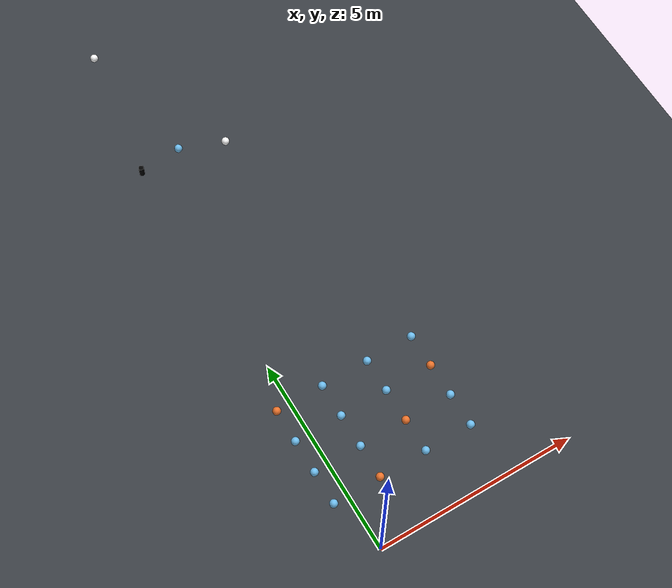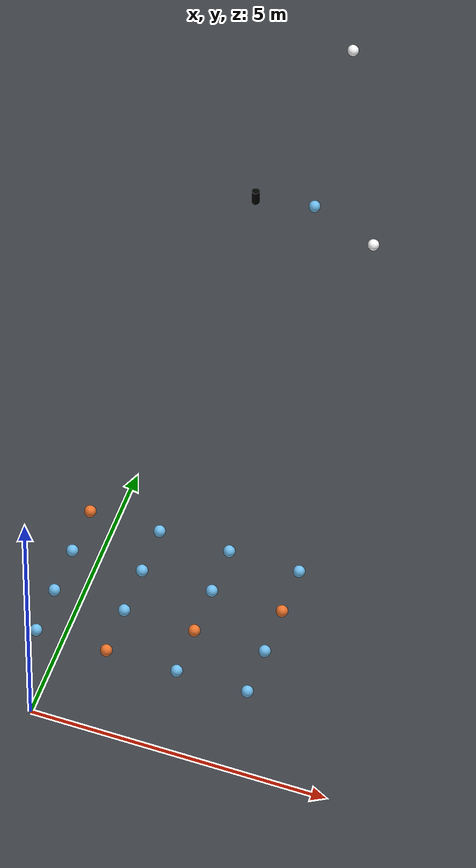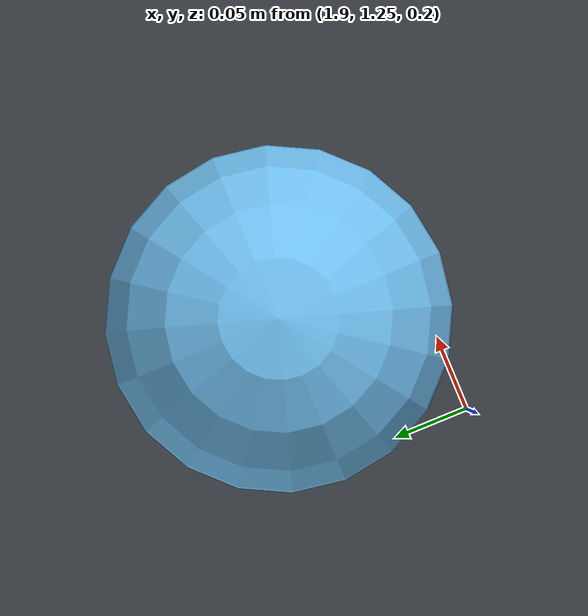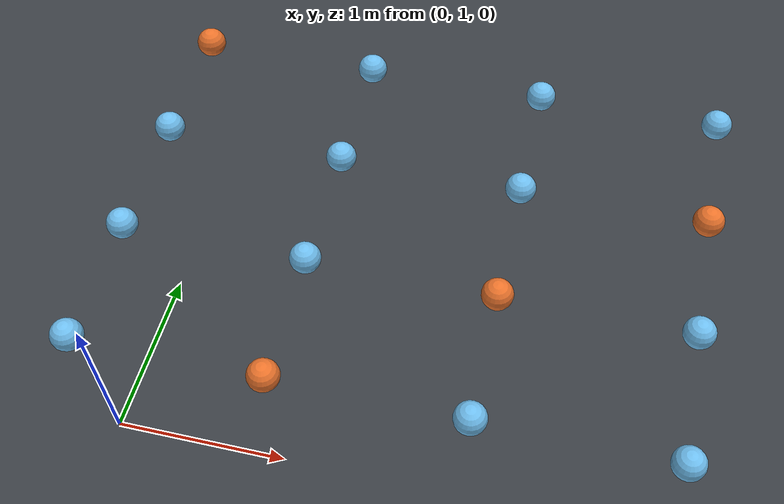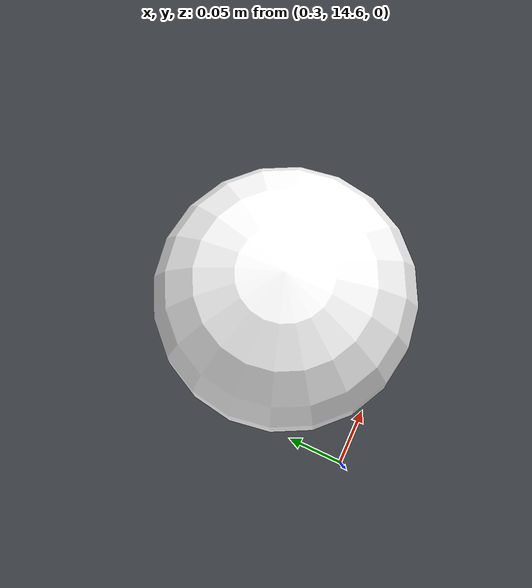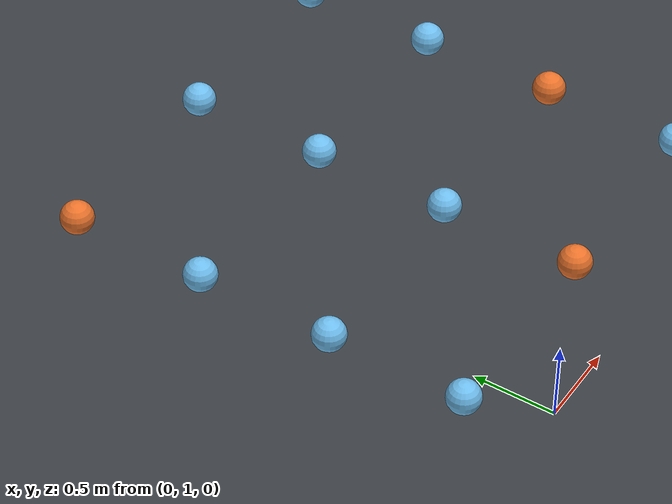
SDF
<sdf version="1.5">
 <world name="earth">
  <physics type="ode">
   <max_step_size>0.001</max_step_size>
   <real_time_factor>1</real_time_factor>
   <real_time_update_rate>1000</real_time_update_rate>
   <gravity>0 0 -9.81</gravity>
   <ode>
    <solver><type>quick</type><min_step_size>0.0001</min_step_size><iters>50</iters><sor>1.3</sor></solver>
    <constraints><cfm>0.0</cfm><erp>0.2</erp></constraints>
   </ode>
  </physics>
  <include><uri>model://sun</uri></include>
  <model name="ground_plane">
   <static>true</static>
   <link name="link">
    <collision name="collision">
     <geometry><plane><normal>0 0 1</normal><size>100 100</size></plane></geometry>
     <surface><friction><ode><mu>100</mu><mu2>50</mu2></ode></friction></surface>
    </collision>
    <visual name="visual">
     <cast_shadows>false</cast_shadows>
     <geometry><plane><normal>0 0 1</normal><size>100 100</size></plane></geometry>
     <material><ambient>0.22 0.24 0.26 1</ambient><diffuse>0.22 0.24 0.26 1</diffuse></material>
    </visual>
   </link>
  </model>
  <model name="football2">
   <pose>2.1 10.8 0.1 0 0 0</pose>
   <link name="2aea_football">
    <inertial>
     <mass>0.35</mass>
     <inertia>
      <ixx>0.00014</ixx>
      <ixy>0.0</ixy>
      <ixz>0.0</ixz>
      <iyy>0.00014</iyy>
      <iyz>0.0</iyz>
      <izz>0.00014</izz>
     </inertia>
    </inertial>
    <collision name="2aea_football_collision">
     <geometry><sphere><radius>0.1</radius></sphere></geometry>
    </collision>
    <visual name="2aea_football_visual">
     <geometry><sphere><radius>0.1</radius></sphere></geometry>
     <material><ambient>1 1 1 1</ambient><diffuse>1 1 1 1</diffuse></material>
    </visual>
   </link>
  </model>
  <model name="coke">
   <pose>-0.1 11.1 0.1 0 0 0</pose>
   <link name="2aea_coke">
    <collision name="2aea_coke_collision">
     <geometry><cylinder><radius>0.065</radius><length>0.34</length></cylinder></geometry>
    </collision>
    <visual name="2aea_coke_visual">
     <geometry><cylinder><radius>0.065</radius><length>0.34</length></cylinder></geometry>
     <material><ambient>0 0 0 1</ambient><diffuse>0 0 0 1</diffuse></material>
    </visual>
   </link>
  </model>
  <model name="football3">
   <pose>0.4 14.7 0.1 0 0 0</pose>
   <link name="3aea_football">
    <inertial>
     <mass>0.35</mass>
     <inertia>
      <ixx>0.00014</ixx>
      <ixy>0.0</ixy>
      <ixz>0.0</ixz>
      <iyy>0.00014</iyy>
      <iyz>0.0</iyz>
      <izz>0.00014</izz>
     </inertia>
    </inertial>
    <collision name="3aea_football_collision">
     <geometry><sphere><radius>0.1</radius></sphere></geometry>
    </collision>
    <visual name="3aea_football_visual">
     <geometry><sphere><radius>0.1</radius></sphere></geometry>
     <material><ambient>1 1 1 1</ambient><diffuse>1 1 1 1</diffuse></material>
    </visual>
   </link>
  </model>
  <model name="hanging_ball">
   <link name="base_link"/>
   <link name="2area_ball">
    <pose>0.95 11.1 0.3 0 0 0</pose>
    <inertial>
     <mass>0.05</mass>
     <inertia>
      <ixx>0.0002</ixx>
      <ixy>0.0</ixy>
      <ixz>0.0</ixz>
      <iyy>0.0002</iyy>
      <iyz>0.0</iyz>
      <izz>0.0002</izz>
     </inertia>
    </inertial>
    <collision name="2area_ball_collision"><geometry><sphere><radius>0.1</radius></sphere></geometry></collision>
    <visual name="2area_ball_visual">
     <geometry><sphere><radius>0.1</radius></sphere></geometry>
     <material><ambient>0.43 0.74 0.93 1</ambient><diffuse>0.43 0.74 0.93 1</diffuse></material>
    </visual>
   </link>
   <joint name="2area_ball_joint" type="ball">
    <pose>0 0 0.3 0 0 0</pose>
    <parent>base_link</parent>
    <child>2area_ball</child>
    <dynamics><damping>0.5</damping></dynamics>
   </joint>
   <link name="1area_ball1_1">
    <pose>-0.4 1.34 0.3 0 0 0</pose>
    <inertial>
     <mass>0.05</mass>
     <inertia>
      <ixx>0.0002</ixx>
      <ixy>0.0</ixy>
      <ixz>0.0</ixz>
      <iyy>0.0002</iyy>
      <iyz>0.0</iyz>
      <izz>0.0002</izz>
     </inertia>
    </inertial>
    <collision name="1area_ball_collision"><geometry><sphere><radius>0.1</radius></sphere></geometry></collision>
    <visual name="1area_ball_visual">
     <geometry><sphere><radius>0.1</radius></sphere></geometry>
     <material><ambient>0.43 0.74 0.93 1</ambient><diffuse>0.43 0.74 0.93 1</diffuse></material>
    </visual>
   </link>
   <joint name="1area_ball1_1_joint" type="ball">
    <pose>0 0 0.3 0 0 0</pose>
    <parent>base_link</parent>
    <child>1area_ball1_1</child>
    <dynamics><damping>0.5</damping></dynamics>
   </joint>
   <joint name="world_to_base" type="fixed"><parent>world</parent><child>base_link</child></joint>
   <link name="1area_ball1_2">
    <pose>0.8 1.34 0.3 0 0 0</pose>
    <inertial>
     <mass>0.05</mass>
     <inertia>
      <ixx>0.0002</ixx>
      <ixy>0.0</ixy>
      <ixz>0.0</ixz>
      <iyy>0.0002</iyy>
      <iyz>0.0</iyz>
      <izz>0.0002</izz>
     </inertia>
    </inertial>
    <collision name="1area_ball_collision"><geometry><sphere><radius>0.1</radius></sphere></geometry></collision>
    <visual name="1area_ball_visual">
     <geometry><sphere><radius>0.1</radius></sphere></geometry>
     <material><ambient>0.92 0.45 0.17 1</ambient><diffuse>0.92 0.45 0.17 1</diffuse></material>
    </visual>
   </link>
   <joint name="1area_ball1_2_joint" type="ball">
    <pose>0 0 0.3 0 0 0</pose>
    <parent>base_link</parent>
    <child>1area_ball1_2</child>
    <dynamics><damping>0.5</damping></dynamics>
   </joint>
   <link name="1area_ball1_3">
    <pose>2 1.34 0.3 0 0 0</pose>
    <inertial>
     <mass>0.05</mass>
     <inertia>
      <ixx>0.0002</ixx>
      <ixy>0.0</ixy>
      <ixz>0.0</ixz>
      <iyy>0.0002</iyy>
      <iyz>0.0</iyz>
      <izz>0.0002</izz>
     </inertia>
    </inertial>
    <collision name="1area_ball_collision"><geometry><sphere><radius>0.1</radius></sphere></geometry></collision>
    <visual name="1area_ball_visual">
     <geometry><sphere><radius>0.1</radius></sphere></geometry>
     <material><ambient>0.43 0.74 0.93 1</ambient><diffuse>0.43 0.74 0.93 1</diffuse></material>
    </visual>
   </link>
   <joint name="1area_ball1_3_joint" type="ball">
    <pose>0 0 0.3 0 0 0</pose>
    <parent>base_link</parent>
    <child>1area_ball1_3</child>
    <dynamics><damping>0.5</damping></dynamics>
   </joint>
   <link name="1area_ball1_4">
    <pose>3.2 1.34 0.3 0 0 0</pose>
    <inertial>
     <mass>0.05</mass>
     <inertia>
      <ixx>0.0002</ixx>
      <ixy>0.0</ixy>
      <ixz>0.0</ixz>
      <iyy>0.0002</iyy>
      <iyz>0.0</iyz>
      <izz>0.0002</izz>
     </inertia>
    </inertial>
    <collision name="1area_ball_collision"><geometry><sphere><radius>0.1</radius></sphere></geometry></collision>
    <visual name="1area_ball_visual">
     <geometry><sphere><radius>0.1</radius></sphere></geometry>
     <material><ambient>0.43 0.74 0.93 1</ambient><diffuse>0.43 0.74 0.93 1</diffuse></material>
    </visual>
   </link>
   <joint name="1area_ball1_4_joint" type="ball">
    <pose>0 0 0.3 0 0 0</pose>
    <parent>base_link</parent>
    <child>1area_ball1_4</child>
    <dynamics><damping>0.5</damping></dynamics>
   </joint>
   <link name="1area_ball2_1">
    <pose>-0.4 2.18 0.3 0 0 0</pose>
    <inertial>
     <mass>0.05</mass>
     <inertia>
      <ixx>0.0002</ixx>
      <ixy>0.0</ixy>
      <ixz>0.0</ixz>
      <iyy>0.0002</iyy>
      <iyz>0.0</iyz>
      <izz>0.0002</izz>
     </inertia>
    </inertial>
    <collision name="1area_ball_collision"><geometry><sphere><radius>0.1</radius></sphere></geometry></collision>
    <visual name="1area_ball_visual">
     <geometry><sphere><radius>0.1</radius></sphere></geometry>
     <material><ambient>0.43 0.74 0.93 1</ambient><diffuse>0.43 0.74 0.93 1</diffuse></material>
    </visual>
   </link>
   <joint name="1area_ball2_1_joint" type="ball">
    <pose>0 0 0.3 0 0 0</pose>
    <parent>base_link</parent>
    <child>1area_ball2_1</child>
    <dynamics><damping>0.5</damping></dynamics>
   </joint>
   <link name="1area_ball2_2">
    <pose>0.8 2.18 0.3 0 0 0</pose>
    <inertial>
     <mass>0.05</mass>
     <inertia>
      <ixx>0.0002</ixx>
      <ixy>0.0</ixy>
      <ixz>0.0</ixz>
      <iyy>0.0002</iyy>
      <iyz>0.0</iyz>
      <izz>0.0002</izz>
     </inertia>
    </inertial>
    <collision name="1area_ball_collision"><geometry><sphere><radius>0.1</radius></sphere></geometry></collision>
    <visual name="1area_ball_visual">
     <geometry><sphere><radius>0.1</radius></sphere></geometry>
     <material><ambient>0.43 0.74 0.93 1</ambient><diffuse>0.43 0.74 0.93 1</diffuse></material>
    </visual>
   </link>
   <joint name="1area_ball2_2_joint" type="ball">
    <pose>0 0 0.3 0 0 0</pose>
    <parent>base_link</parent>
    <child>1area_ball2_2</child>
    <dynamics><damping>0.5</damping></dynamics>
   </joint>
   <link name="1area_ball2_3">
    <pose>2 2.18 0.3 0 0 0</pose>
    <inertial>
     <mass>0.05</mass>
     <inertia>
      <ixx>0.0002</ixx>
      <ixy>0.0</ixy>
      <ixz>0.0</ixz>
      <iyy>0.0002</iyy>
      <iyz>0.0</iyz>
      <izz>0.0002</izz>
     </inertia>
    </inertial>
    <collision name="1area_ball_collision"><geometry><sphere><radius>0.1</radius></sphere></geometry></collision>
    <visual name="1area_ball_visual">
     <geometry><sphere><radius>0.1</radius></sphere></geometry>
     <material><ambient>0.92 0.45 0.17 1</ambient><diffuse>0.92 0.45 0.17 1</diffuse></material>
    </visual>
   </link>
   <joint name="1area_ball2_3_joint" type="ball">
    <pose>0 0 0.3 0 0 0</pose>
    <parent>base_link</parent>
    <child>1area_ball2_3</child>
    <dynamics><damping>0.5</damping></dynamics>
   </joint>
   <link name="1area_ball2_4">
    <pose>3.2 2.18 0.3 0 0 0</pose>
    <inertial>
     <mass>0.05</mass>
     <inertia>
      <ixx>0.0002</ixx>
      <ixy>0.0</ixy>
      <ixz>0.0</ixz>
      <iyy>0.0002</iyy>
      <iyz>0.0</iyz>
      <izz>0.0002</izz>
     </inertia>
    </inertial>
    <collision name="1area_ball_collision"><geometry><sphere><radius>0.1</radius></sphere></geometry></collision>
    <visual name="1area_ball_visual">
     <geometry><sphere><radius>0.1</radius></sphere></geometry>
     <material><ambient>0.43 0.74 0.93 1</ambient><diffuse>0.43 0.74 0.93 1</diffuse></material>
    </visual>
   </link>
   <joint name="1area_ball2_4_joint" type="ball">
    <pose>0 0 0.3 0 0 0</pose>
    <parent>base_link</parent>
    <child>1area_ball2_4</child>
    <dynamics><damping>0.5</damping></dynamics>
   </joint>
   <link name="1area_ball3_1">
    <pose>-0.4 3.02 0.3 0 0 0</pose>
    <inertial>
     <mass>0.05</mass>
     <inertia>
      <ixx>0.0002</ixx>
      <ixy>0.0</ixy>
      <ixz>0.0</ixz>
      <iyy>0.0002</iyy>
      <iyz>0.0</iyz>
      <izz>0.0002</izz>
     </inertia>
    </inertial>
    <collision name="1area_ball_collision"><geometry><sphere><radius>0.1</radius></sphere></geometry></collision>
    <visual name="1area_ball_visual">
     <geometry><sphere><radius>0.1</radius></sphere></geometry>
     <material><ambient>0.43 0.74 0.93 1</ambient><diffuse>0.43 0.74 0.93 1</diffuse></material>
    </visual>
   </link>
   <joint name="1area_ball3_1_joint" type="ball">
    <pose>0 0 0.3 0 0 0</pose>
    <parent>base_link</parent>
    <child>1area_ball3_1</child>
    <dynamics><damping>0.5</damping></dynamics>
   </joint>
   <link name="1area_ball3_2">
    <pose>0.8 3.02 0.3 0 0 0</pose>
    <inertial>
     <mass>0.05</mass>
     <inertia>
      <ixx>0.0002</ixx>
      <ixy>0.0</ixy>
      <ixz>0.0</ixz>
      <iyy>0.0002</iyy>
      <iyz>0.0</iyz>
      <izz>0.0002</izz>
     </inertia>
    </inertial>
    <collision name="1area_ball_collision"><geometry><sphere><radius>0.1</radius></sphere></geometry></collision>
    <visual name="1area_ball_visual">
     <geometry><sphere><radius>0.1</radius></sphere></geometry>
     <material><ambient>0.43 0.74 0.93 1</ambient><diffuse>0.43 0.74 0.93 1</diffuse></material>
    </visual>
   </link>
   <joint name="1area_ball3_2_joint" type="ball">
    <pose>0 0 0.3 0 0 0</pose>
    <parent>base_link</parent>
    <child>1area_ball3_2</child>
    <dynamics><damping>0.5</damping></dynamics>
   </joint>
   <link name="1area_ball3_3">
    <pose>2 3.02 0.3 0 0 0</pose>
    <inertial>
     <mass>0.05</mass>
     <inertia>
      <ixx>0.0002</ixx>
      <ixy>0.0</ixy>
      <ixz>0.0</ixz>
      <iyy>0.0002</iyy>
      <iyz>0.0</iyz>
      <izz>0.0002</izz>
     </inertia>
    </inertial>
    <collision name="1area_ball_collision"><geometry><sphere><radius>0.1</radius></sphere></geometry></collision>
    <visual name="1area_ball_visual">
     <geometry><sphere><radius>0.1</radius></sphere></geometry>
     <material><ambient>0.43 0.74 0.93 1</ambient><diffuse>0.43 0.74 0.93 1</diffuse></material>
    </visual>
   </link>
   <joint name="1area_ball3_3_joint" type="ball">
    <pose>0 0 0.3 0 0 0</pose>
    <parent>base_link</parent>
    <child>1area_ball3_3</child>
    <dynamics><damping>0.5</damping></dynamics>
   </joint>
   <link name="1area_ball3_4">
    <pose>3.2 3.02 0.3 0 0 0</pose>
    <inertial>
     <mass>0.05</mass>
     <inertia>
      <ixx>0.0002</ixx>
      <ixy>0.0</ixy>
      <ixz>0.0</ixz>
      <iyy>0.0002</iyy>
      <iyz>0.0</iyz>
      <izz>0.0002</izz>
     </inertia>
    </inertial>
    <collision name="1area_ball_collision"><geometry><sphere><radius>0.1</radius></sphere></geometry></collision>
    <visual name="1area_ball_visual">
     <geometry><sphere><radius>0.1</radius></sphere></geometry>
     <material><ambient>0.92 0.45 0.17 1</ambient><diffuse>0.92 0.45 0.17 1</diffuse></material>
    </visual>
   </link>
   <joint name="1area_ball3_4_joint" type="ball">
    <pose>0 0 0.3 0 0 0</pose>
    <parent>base_link</parent>
    <child>1area_ball3_4</child>
    <dynamics><damping>0.5</damping></dynamics>
   </joint>
  </model>
  <model name="hanging_ball2">
   <link name="base_link2"/>
   <joint name="world_to_base2" type="fixed"><parent>world</parent><child>base_link2</child></joint>
   <link name="1area_ball4_1">
    <inertial>
     <mass>0.05</mass>
     <inertia>
      <ixx>0.0002</ixx>
      <ixy>0.0</ixy>
      <ixz>0.0</ixz>
      <iyy>0.0002</iyy>
      <iyz>0.0</iyz>
      <izz>0.0002</izz>
     </inertia>
    </inertial>
    <pose>-0.4 3.86 0.3 0 0 0</pose>
    <collision name="1area_ball_collision"><geometry><sphere><radius>0.1</radius></sphere></geometry></collision>
    <visual name="1area_ball_visual">
     <geometry><sphere><radius>0.1</radius></sphere></geometry>
     <material><ambient>0.92 0.45 0.17 1</ambient><diffuse>0.92 0.45 0.17 1</diffuse></material>
    </visual>
   </link>
   <joint name="1area_ball4_1_joint" type="ball">
    <pose>0 0 0.3 0 0 0</pose>
    <parent>base_link2</parent>
    <child>1area_ball4_1</child>
    <dynamics><damping>0.5</damping></dynamics>
   </joint>
   <link name="1area_ball4_2">
    <pose>0.8 3.86 0.3 0 0 0</pose>
    <inertial>
     <mass>0.01</mass>
     <inertia>
      <ixx>0.00004</ixx>
      <ixy>0.0</ixy>
      <ixz>0.0</ixz>
      <iyy>0.00004</iyy>
      <iyz>0.0</iyz>
      <izz>0.00004</izz>
     </inertia>
    </inertial>
    <collision name="1area_ball_collision"><geometry><sphere><radius>0.1</radius></sphere></geometry></collision>
    <visual name="1area_ball_visual">
     <geometry><sphere><radius>0.1</radius></sphere></geometry>
     <material><ambient>0.43 0.74 0.93 1</ambient><diffuse>0.43 0.74 0.93 1</diffuse></material>
    </visual>
   </link>
   <joint name="1area_ball4_2_joint" type="ball">
    <pose>0 0 0.3 0 0 0</pose>
    <parent>base_link2</parent>
    <child>1area_ball4_2</child>
    <dynamics><damping>0.5</damping></dynamics>
   </joint>
   <link name="1area_ball4_3">
    <pose>2 3.86 0.3 0 0 0</pose>
    <inertial>
     <mass>0.05</mass>
     <inertia>
      <ixx>0.0002</ixx>
      <ixy>0.0</ixy>
      <ixz>0.0</ixz>
      <iyy>0.0002</iyy>
      <iyz>0.0</iyz>
      <izz>0.0002</izz>
     </inertia>
    </inertial>
    <collision name="1area_ball_collision"><geometry><sphere><radius>0.1</radius></sphere></geometry></collision>
    <visual name="1area_ball_visual">
     <geometry><sphere><radius>0.1</radius></sphere></geometry>
     <material><ambient>0.43 0.74 0.93 1</ambient><diffuse>0.43 0.74 0.93 1</diffuse></material>
    </visual>
   </link>
   <joint name="1area_ball4_3_joint" type="ball">
    <pose>0 0 0.3 0 0 0</pose>
    <parent>base_link2</parent>
    <child>1area_ball4_3</child>
    <dynamics><damping>0.5</damping></dynamics>
   </joint>
   <link name="1area_ball4_4">
    <pose>3.2 3.86 0.3 0 0 0</pose>
    <inertial>
     <mass>0.05</mass>
     <inertia>
      <ixx>0.0002</ixx>
      <ixy>0.0</ixy>
      <ixz>0.0</ixz>
      <iyy>0.0002</iyy>
      <iyz>0.0</iyz>
      <izz>0.0002</izz>
     </inertia>
    </inertial>
    <collision name="1area_ball_collision"><geometry><sphere><radius>0.1</radius></sphere></geometry></collision>
    <visual name="1area_ball_visual">
     <geometry><sphere><radius>0.1</radius></sphere></geometry>
     <material><ambient>0.43 0.74 0.93 1</ambient><diffuse>0.43 0.74 0.93 1</diffuse></material>
    </visual>
   </link>
   <joint name="1area_ball4_4_joint" type="ball">
    <pose>0 0 0.3 0 0 0</pose>
    <parent>base_link2</parent>
    <child>1area_ball4_4</child>
    <dynamics><damping>0.5</damping></dynamics>
   </joint>
  </model>
 </world>
</sdf>
